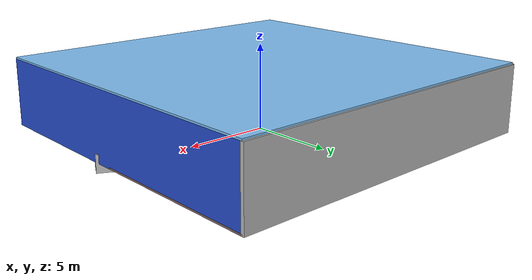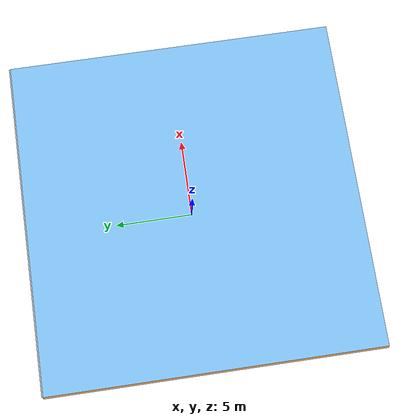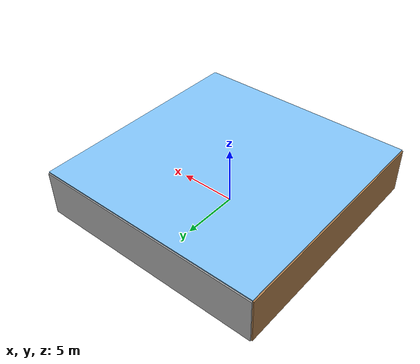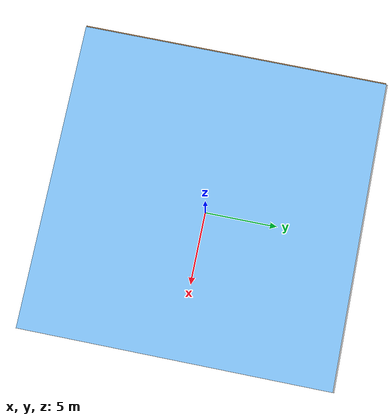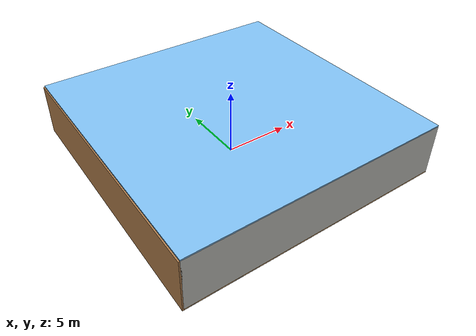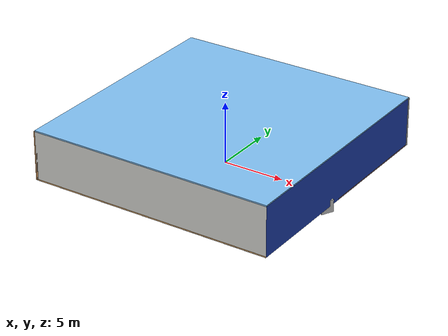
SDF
<sdf version="1.4">
 <world name="default">
  <physics type="ode">
   <max_step_size>0.001</max_step_size>
   <real_time_factor>1</real_time_factor>
   <real_time_update_rate>1000</real_time_update_rate>
   <gravity>0 0 -9.8</gravity>
  </physics>
  <scene><ambient>0.4 0.4 0.4 1</ambient><background>0.7 0.7 0.7 1</background><shadows>1</shadows></scene>
  <model name="Surrounding">
   <static>1</static>
   <link name="Ceiling">
    <collision name="Ceiling_Collision"><geometry><box><size>20 20 0.1</size></box></geometry></collision>
    <visual name="Ceiling_Visual">
     <geometry><box><size>20 20 0.1</size></box></geometry>
     <material>
      <script><uri>file://media/materials/scripts/gazebo.material</uri><name>Gazebo/SkyBlue</name></script>
     </material>
    </visual>
    <pose>0 0 4.05 0 0 0</pose>
   </link>
   <link name="Wall_South">
    <collision name="Wall_South_Collision">
     <geometry><box><size>20 0 4</size></box></geometry>
     <pose>0 0 2 0 -0 0</pose>
    </collision>
    <visual name="Wall_South_Visual">
     <pose>0 0 2 0 -0 0</pose>
     <geometry><box><size>20 0 4</size></box></geometry>
     <material>
      <script><uri>file://media/materials/scripts/gazebo.material</uri><name>Gazebo/CeilingTiled</name></script>
     </material>
    </visual>
    <velocity_decay><linear>0</linear><angular>0</angular></velocity_decay>
    <pose>0 -10 0 0 -0 0</pose>
   </link>
   <link name="Wall_East">
    <collision name="Wall_21_Collision">
     <geometry><box><size>20 0 4</size></box></geometry>
     <pose>0 0 2 0 -0 0</pose>
    </collision>
    <visual name="Wall_21_Visual">
     <pose>0 0 2 0 -0 0</pose>
     <geometry><box><size>20 0 4</size></box></geometry>
     <material>
      <script><uri>file://media/materials/scripts/gazebo.material</uri><name>Gazebo/Blue</name></script>
     </material>
    </visual>
    <velocity_decay><linear>0</linear><angular>0</angular></velocity_decay>
    <pose>10 0 0 0 -0 1.5708</pose>
   </link>
   <link name="Wall_North">
    <collision name="Wall_22_Collision">
     <geometry><box><size>20 0.2 4</size></box></geometry>
     <pose>0 0 2 0 -0 0</pose>
    </collision>
    <visual name="Wall_22_Visual">
     <pose>0 0 2 0 -0 0</pose>
     <geometry><box><size>20 0.2 4</size></box></geometry>
     <material>
      <script><uri>file://media/materials/scripts/gazebo.material</uri><name>Gazebo/LightOff</name></script>
     </material>
    </visual>
    <velocity_decay><linear>0</linear><angular>0</angular></velocity_decay>
    <pose>0 10 0 0 -0 0</pose>
   </link>
   <link name="Wall_West">
    <collision name="Wall_23_Collision">
     <geometry><box><size>20 0.2 4</size></box></geometry>
     <pose>0 0 2 0 -0 0</pose>
    </collision>
    <visual name="Wall_23_Visual">
     <pose>0 0 2 0 -0 0</pose>
     <geometry><box><size>20 0.2 4</size></box></geometry>
     <material>
      <script><uri>file://media/materials/scripts/gazebo.material</uri><name>Gazebo/WoodPallet</name></script>
     </material>
    </visual>
    <velocity_decay><linear>0</linear><angular>0</angular></velocity_decay>
    <pose>-10 0 0 0 0 -1.5708</pose>
   </link>
   <link name="Ground_link">
    <collision name="collision">
     <pose>0 0 .05 0 -0 0</pose>
     <geometry><box><size>20 20 0.1</size></box></geometry>
    </collision>
    <visual name="visual">
     <pose>0 0 .05 0 -0 0</pose>
     <geometry><box><size>20 20 0.1</size></box></geometry>
     <material>
      <script>
       <uri>file://media/materials/scripts/gazebo.material</uri>
       <name>Gazebo/OrangeTransparent</name>
      </script>
     </material>
    </visual>
   </link>
   <static>1</static>
  </model>
  <spherical_coordinates>
   <surface_model>EARTH_WGS84</surface_model>
   <latitude_deg>0</latitude_deg>
   <longitude_deg>0</longitude_deg>
   <elevation>0</elevation>
   <heading_deg>0</heading_deg>
  </spherical_coordinates>
  <light name="lightball_0" type="diffuse">
   <diffuse>0.8 0.8 0.8 1</diffuse>
   <specular>0.2 0.2 0.2 1</specular>
   <attenuation>
    <range>100</range>
    <constant>0.7</constant>
    <linear>0.01</linear>
    <quadratic>0.001</quadratic>
   </attenuation>
   <direction>-0.5 0.1 -0.9</direction>
   <pose>8.65878454257 -3.07726172431 1.12747252743 0 0 0</pose>
  </light>
  <light name="lightball_1" type="diffuse">
   <diffuse>0.8 0.8 0.8 1</diffuse>
   <specular>0.2 0.2 0.2 1</specular>
   <attenuation>
    <range>100</range>
    <constant>0.7</constant>
    <linear>0.01</linear>
    <quadratic>0.001</quadratic>
   </attenuation>
   <direction>-0.5 0.1 -0.9</direction>
   <pose>-5.79449512177 -3.22305178402 0.94813389574 0 0 0</pose>
  </light>
  <light name="lightball_2" type="diffuse">
   <diffuse>0.8 0.8 0.8 1</diffuse>
   <specular>0.2 0.2 0.2 1</specular>
   <attenuation>
    <range>100</range>
    <constant>0.7</constant>
    <linear>0.01</linear>
    <quadratic>0.001</quadratic>
   </attenuation>
   <direction>-0.5 0.1 -0.9</direction>
   <pose>4.74001589138 -2.79339219959 3.58792346817 0 0 0</pose>
  </light>
  <light name="lightball_3" type="diffuse">
   <diffuse>0.8 0.8 0.8 1</diffuse>
   <specular>0.2 0.2 0.2 1</specular>
   <attenuation>
    <range>100</range>
    <constant>0.7</constant>
    <linear>0.01</linear>
    <quadratic>0.001</quadratic>
   </attenuation>
   <direction>-0.5 0.1 -0.9</direction>
   <pose>2.32774902125 -7.15582240106 0.589953230397 0 0 0</pose>
  </light>
  <light name="lightball_4" type="diffuse">
   <diffuse>0.8 0.8 0.8 1</diffuse>
   <specular>0.2 0.2 0.2 1</specular>
   <attenuation>
    <range>100</range>
    <constant>0.7</constant>
    <linear>0.01</linear>
    <quadratic>0.001</quadratic>
   </attenuation>
   <direction>-0.5 0.1 -0.9</direction>
   <pose>9.14035082644 -5.33657560083 2.20578883287 0 0 0</pose>
  </light>
  <include><uri>model://cabinet</uri><pose>-0.713611949697 7.52041632096 0 0 0 2.66279897672</pose></include>
  <include>
   <uri>model://construction_cone</uri>
   <pose>1.22022028957 -0.955559144929 0 0 0 1.49399082235</pose>
  </include>
  <include>
   <uri>model://textured_shapes</uri>
   <pose>8.13401334463 -0.70019387024 0 0 0 1.09875975846</pose>
  </include>
  <include><uri>model://table</uri><pose>7.67084260289 8.21243980622 0 0 0 2.40680827558</pose></include>
 </world>
</sdf>

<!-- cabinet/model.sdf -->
<sdf version="1.5">
  <model name="cabinet">
    <static>true</static>
    <link name="cabinet_bottom_plate">
      <inertial>
        <pose>0 0 -1 0 0 0</pose>
        <inertia>
          <ixx>2.050000</ixx>
          <ixy>0</ixy>
          <ixz>0</ixz>
          <iyy>2.050000</iyy>
          <iyz>0</iyz>
          <izz>2.050000</izz>
        </inertia>
        <mass>25.000000</mass>
      </inertial>
      <collision name="cabinet_bottom_plate_geom">
        <pose>0 0 0.010000 0 0 0</pose>
        <geometry>
          <box>
            <size>0.450000 0.450000 0.020000</size>
          </box>
        </geometry>
      </collision>
      <visual name="cabinet_bottom_plate_geom_visual">
        <pose>0 0 0.010000 0 0 0</pose>
        <geometry>
          <box>
            <size>0.450000 0.450000 0.020000</size>
          </box>
        </geometry>
        <material>
          <script>
            <uri>model://media/materials/scripts/gazebo.material</uri>
            <name>Gazebo/Wood</name>
          </script>
        </material>
      </visual>
      <collision name="cabinet_bottom_plate_geom_cabinet_back_plate">
        <pose>0.235000 0 0.510000 0 0 0</pose>
        <geometry>
          <box>
            <size>0.020000 0.450000 1.020000</size>
          </box>
        </geometry>
      </collision>
      <visual name="cabinet_bottom_plate_geom_cabinet_back_plate_visual">
        <pose>0.235000 0 0.510000 0 0 0</pose>
        <geometry>
          <box>
            <size>0.020000 0.450000 1.020000</size>
          </box>
        </geometry>
        <material>
          <script>
            <uri>model://media/materials/scripts/gazebo.material</uri>
            <name>Gazebo/Wood</name>
          </script>
        </material>
      </visual>
      <collision name="cabinet_bottom_plate_geom_cabinet_left_plate">
        <pose>0 0.235000 0.510000 0 0 0</pose>
        <geometry>
          <box>
            <size>0.450000 0.020000 1.020000</size>
          </box>
        </geometry>
      </collision>
      <visual name="cabinet_bottom_plate_geom_cabinet_left_plate_visual">
        <pose>0 0.235000 0.510000 0 0 0</pose>
        <geometry>
          <box>
            <size>0.450000 0.020000 1.020000</size>
          </box>
        </geometry>
        <material>
          <script>
            <uri>model://media/materials/scripts/gazebo.material</uri>
            <name>Gazebo/Wood</name>
          </script>
        </material>
      </visual>
      <collision name="cabinet_bottom_plate_geom_cabinet_middle_plate">
        <pose>0 0 0.510000 0 0 0</pose>
        <geometry>
          <box>
            <size>0.450000 0.450000 0.020000</size>
          </box>
        </geometry>
      </collision>
      <visual name="cabinet_bottom_plate_geom_cabinet_middle_plate_visual">
        <pose>0 0 0.510000 0 0 0</pose>
        <geometry>
          <box>
            <size>0.450000 0.450000 0.020000</size>
          </box>
        </geometry>
        <material>
          <script>
            <uri>model://media/materials/scripts/gazebo.material</uri>
            <name>Gazebo/Wood</name>
          </script>
        </material>
      </visual>
      <collision name="cabinet_bottom_plate_geom_cabinet_right_plate">
        <pose>0 -0.235000 0.510000 0 0 0</pose>
        <geometry>
          <box>
            <size>0.450000 0.020000 1.020000</size>
          </box>
        </geometry>
      </collision>
      <visual name="cabinet_bottom_plate_geom_cabinet_right_plate_visual">
        <pose>0 -0.235000 0.510000 0 0 0</pose>
        <geometry>
          <box>
            <size>0.450000 0.020000 1.020000</size>
          </box>
        </geometry>
        <material>
          <script>
            <uri>model://media/materials/scripts/gazebo.material</uri>
            <name>Gazebo/Wood</name>
          </script>
        </material>
      </visual>
      <collision name="cabinet_bottom_plate_geom_cabinet_top_plate">
        <pose>0 0 1.010000 0 0 0</pose>
        <geometry>
          <box>
            <size>0.450000 0.450000 0.020000</size>
          </box>
        </geometry>
      </collision>
      <visual name="cabinet_bottom_plate_geom_cabinet_top_plate_visual">
        <pose>0 0 1.010000 0 0 0</pose>
        <geometry>
          <box>
            <size>0.450000 0.450000 0.020000</size>
          </box>
        </geometry>
        <material>
          <script>
            <uri>model://media/materials/scripts/gazebo.material</uri>
            <name>Gazebo/Wood</name>
          </script>
        </material>
      </visual>
    </link>
  </model>
</sdf>

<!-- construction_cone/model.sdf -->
<sdf version="1.5">
  <model name="Construction Cone">
    <link name="link">
      <collision name="collision">
        <geometry>
          <mesh>
            <scale>10 10 10</scale>
            <uri>file://isr-testbed/construction_cone/meshes/construction_cone.dae</uri>
          </mesh>
        </geometry>
      </collision>
      <visual name="visual">
        <geometry>
          <mesh>
            <scale>10 10 10</scale>
            <uri>file://isr-testbed/construction_cone/meshes/construction_cone.dae</uri>
          </mesh>
        </geometry>
      </visual>
    </link>
  </model>
</sdf>

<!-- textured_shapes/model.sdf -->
<sdf version="1.6">
  <model name="textured_shapes">
    <pose>0 0 0.5 0 0 0</pose>
    <link name="box">
      <pose>0 -1.5 0 0 0 0</pose>
      <collision name="collision">
        <geometry>
          <box>
            <size>1 1 1</size>
          </box>
        </geometry>
      </collision>
      <visual name="visual">
        <geometry>
          <box>
            <size>1 1 1</size>
          </box>
        </geometry>
        <material>
          <script>
            <uri>model://../model_source/models/textured_shapes/materials/scripts</uri>
            <uri>model://../model_source/models/textured_shapes/materials/textures</uri>
            <name>TexturedShape/Squares</name>
          </script>
        </material>
      </visual>
    </link>
    <link name="sphere">
      <collision name="collision">
        <geometry>
          <sphere>
            <radius>0.5</radius>
          </sphere>
        </geometry>
      </collision>
      <visual name="visual">
        <geometry>
          <sphere>
            <radius>0.5</radius>
          </sphere>
        </geometry>
        <material>
          <script>
            <uri>model://../model_source/models/textured_shapes/materials/scripts</uri>
            <uri>model://../model_source/models/textured_shapes/materials/textures</uri>
            <name>TexturedShape/Squares</name>
          </script>
        </material>
      </visual>
    </link>
    <link name="cylinder">
      <pose>0 1.5 0 0 0 0</pose>
      <collision name="collision">
        <geometry>
          <cylinder>
            <radius>0.5</radius>
            <length>1</length>
          </cylinder>
        </geometry>
      </collision>
      <visual name="visual">
        <geometry>
          <cylinder>
            <radius>0.5</radius>
            <length>1</length>
          </cylinder>
        </geometry>
        <material>
          <script>
            <uri>model://../model_source/models/textured_shapes/materials/scripts</uri>
            <uri>model://../model_source/models/textured_shapes/materials/textures</uri>
            <name>TexturedShape/Squares</name>
          </script>
        </material>
      </visual>
    </link>
  </model>
</sdf>

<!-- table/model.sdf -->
<sdf version="1.5">
  <model name="table">
    <static>true</static>
    <link name="link">
      <collision name="surface">
        <pose>0 0 1.0 0 0 0</pose>
        <geometry>
          <box>
            <size>1.5 0.8 0.03</size>
          </box>
        </geometry>
        <surface>
          <friction>
            <ode>
              <mu>0.6</mu>
              <mu2>0.6</mu2>
            </ode>
          </friction>
        </surface>
      </collision>
      <visual name="visual1">
        <pose>0 0 1.0 0 0 0</pose>
        <geometry>
          <box>
            <size>1.5 0.8 0.03</size>
          </box>
        </geometry>
        <material>
          <script>
            <uri>model://media/materials/scripts/gazebo.material</uri>
            <name>Gazebo/Wood</name>
          </script>
        </material>
      </visual>
      <collision name="front_left_leg">
        <pose>0.68 0.38 0.5 0 0 0</pose>
        <geometry>
          <cylinder>
            <radius>0.02</radius>
            <length>1.0</length>
          </cylinder>
        </geometry>
      </collision>
      <visual name="front_left_leg">
        <pose>0.68 0.38 0.5 0 0 0</pose>
        <geometry>
          <cylinder>
            <radius>0.02</radius>
            <length>1.0</length>
          </cylinder>
        </geometry>
        <material>
          <script>
            <uri>model://media/materials/scripts/gazebo.material</uri>
            <name>Gazebo/Grey</name>
          </script>
        </material>
      </visual>
      <collision name="front_right_leg">
        <pose>0.68 -0.38 0.5 0 0 0</pose>
        <geometry>
          <cylinder>
            <radius>0.02</radius>
            <length>1.0</length>
          </cylinder>
        </geometry>
      </collision>
      <visual name="front_right_leg">
        <pose>0.68 -0.38 0.5 0 0 0</pose>
        <geometry>
          <cylinder>
            <radius>0.02</radius>
            <length>1.0</length>
          </cylinder>
        </geometry>
        <material>
          <script>
            <uri>model://media/materials/scripts/gazebo.material</uri>
            <name>Gazebo/Grey</name>
          </script>
        </material>
      </visual>
      <collision name="back_right_leg">
        <pose>-0.68 -0.38 0.5 0 0 0</pose>
        <geometry>
          <cylinder>
            <radius>0.02</radius>
            <length>1.0</length>
          </cylinder>
        </geometry>
      </collision>
      <visual name="back_right_leg">
        <pose>-0.68 -0.38 0.5 0 0 0</pose>
        <geometry>
          <cylinder>
            <radius>0.02</radius>
            <length>1.0</length>
          </cylinder>
        </geometry>
        <material>
          <script>
            <uri>model://media/materials/scripts/gazebo.material</uri>
            <name>Gazebo/Grey</name>
          </script>
        </material>
      </visual>
      <collision name="back_left_leg">
        <pose>-0.68 0.38 0.5 0 0 0</pose>
        <geometry>
          <cylinder>
            <radius>0.02</radius>
            <length>1.0</length>
          </cylinder>
        </geometry>
      </collision>
      <visual name="back_left_leg">
        <pose>-0.68 0.38 0.5 0 0 0</pose>
        <geometry>
          <cylinder>
            <radius>0.02</radius>
            <length>1.0</length>
          </cylinder>
        </geometry>
        <material>
          <script>
            <uri>model://media/materials/scripts/gazebo.material</uri>
            <name>Gazebo/Grey</name>
          </script>
        </material>
      </visual>
    </link>
  </model>
</sdf>
